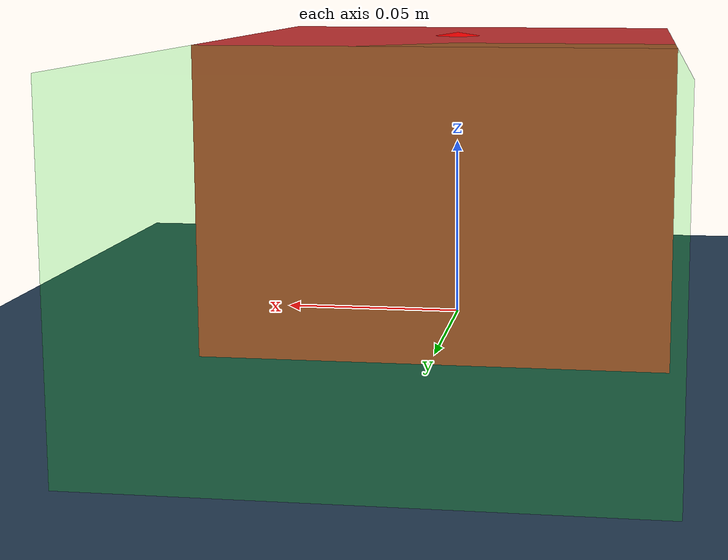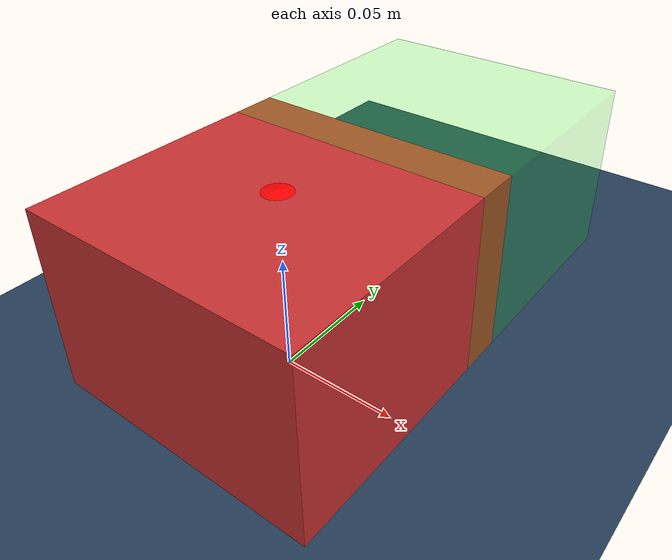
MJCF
<mujoco model="pushbox_scene">
  <!-- Model that includes like lighting and a ground. -->
  <include file="pushbox.xml"/>

  <statistic center="0 0 0" extent="0.9"/>

  <visual>
    <headlight diffuse="0.6 0.6 0.6" ambient="0.3 0.3 0.3" specular="0 0 0"/>
    <rgba haze="0.15 0.25 0.35 1"/>
    <global azimuth="120" elevation="-20" offwidth="640" offheight="480"/>
  </visual>

  <asset>
    <texture type="skybox" builtin="gradient" rgb1="0.3 0.5 0.7" rgb2="0 0 0" width="512" height="3072"/>
    <texture type="2d" name="groundplane" builtin="checker" mark="edge" rgb1="0.2 0.3 0.4" rgb2="0.1 0.2 0.3"
      markrgb="0.8 0.8 0.8" width="300" height="300"/>
    <material name="groundplane" texture="groundplane" texuniform="true" texrepeat="5 5" reflectance="0.2"/>
  </asset>

  <worldbody>
    <light pos="0 0 1"/>
    <geom name="floor" size="0 0 .125" type="plane" material="groundplane" contype="1"/>
  </worldbody>

</mujoco>

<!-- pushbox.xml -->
<mujoco model="pushbox">

  <option timestep="0.005" iterations="5" ls_iterations="8" integrator="implicitfast">
    <flag eulerdamp="disable"/>
  </option>
  <custom>
    <numeric data="5" name="max_contact_points"/>
    <numeric data="5" name="max_geom_pairs"/>
  </custom>

  <default>
    <default class="goal">
      <geom conaffinity="0" contype="0" rgba="0 1 0 0.2"/>
    </default>
    <default class="translation">
      <position kp="20" kv="5" ctrlrange="-0.75 0.75"/>
    </default>
    <geom friction="1"/>
  </default>

  <worldbody>
    <!-- Reference site for Cartesian control -->
    <site name="reference" pos="0.0 0.0 0.04" size="0.01" rgba="1 0 0 0.0"/>

    <!-- Replace static goal with mocap body -->
    <body name="goal" mocap="true" pos="0.0 0.1 0.04">
      <geom class="goal" name="goal_cube" type="box" size="0.06 0.06 0.04"/>
    </body>

    <body name="box" pos="0.0 0.0 0.04">
      <joint type="free"/>
      <geom name="box_geom" type="box" size="0.06 0.06 0.04" rgba="0.8 0.2 0.2 1"
            condim="3" friction="0.6" contype="2" conaffinity="1" solref="0.02 1" priority="1"/>
      <site name="box_site" pos="0 0 0" size="0.005"/>
      <inertial pos="0 0 0" mass="0.15" diaginertia="0.001 0.001 0.001"/>
    </body>

    <body name="pusher" pos="0 0.0 0.041">
      <joint name="root_x" type="slide" pos="0 0 0" axis="1 0 0" />
      <joint name="root_y" type="slide" pos="0 0 0" axis="0 1 0" />
      <geom name="pusher" type="sphere" size="0.04" rgba="1 0 0 1" contype="1" conaffinity="1"/>
      <site name="pusher" pos="0 0 0" size="0.04" rgba="1 0 0 0" />
    </body>
  </worldbody>

  <actuator>
    <position name="x" site="pusher" refsite="reference" gear="1 0 0 0 0 0" class="translation"/>
    <position name="y" site="pusher" refsite="reference" gear="0 1 0 0 0 0" class="translation"/>
  </actuator>
</mujoco>
